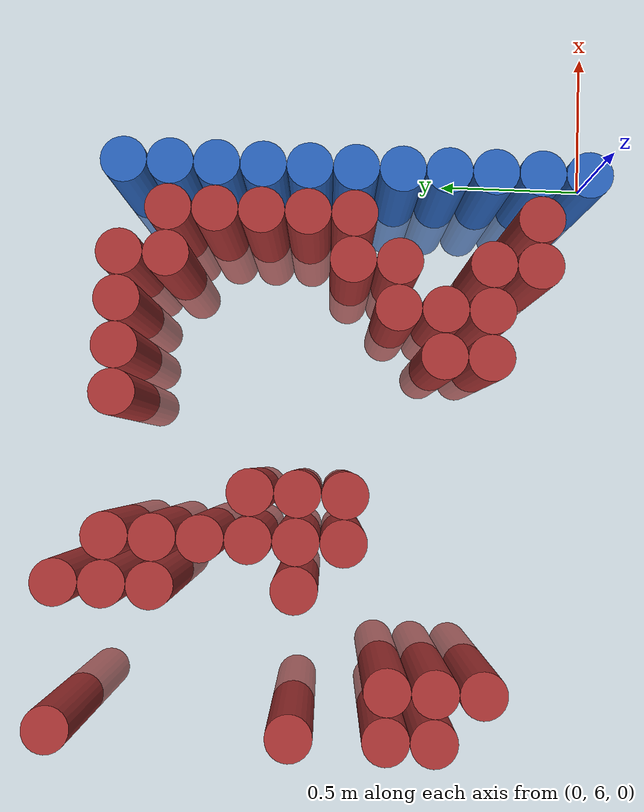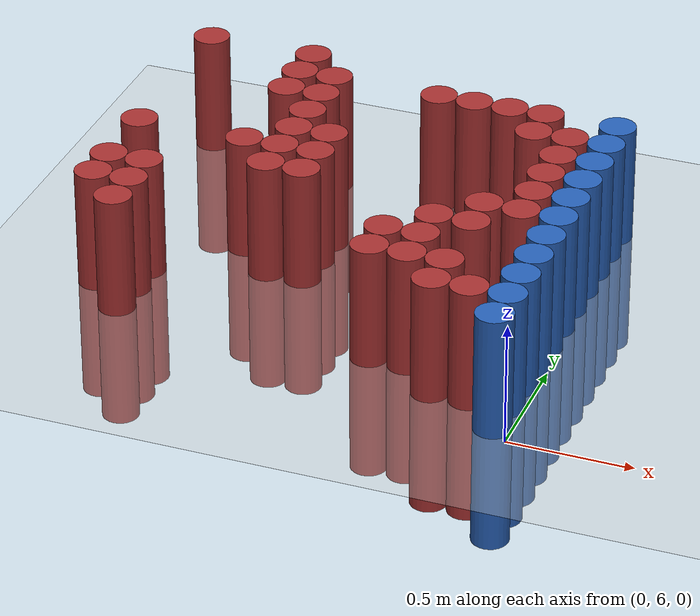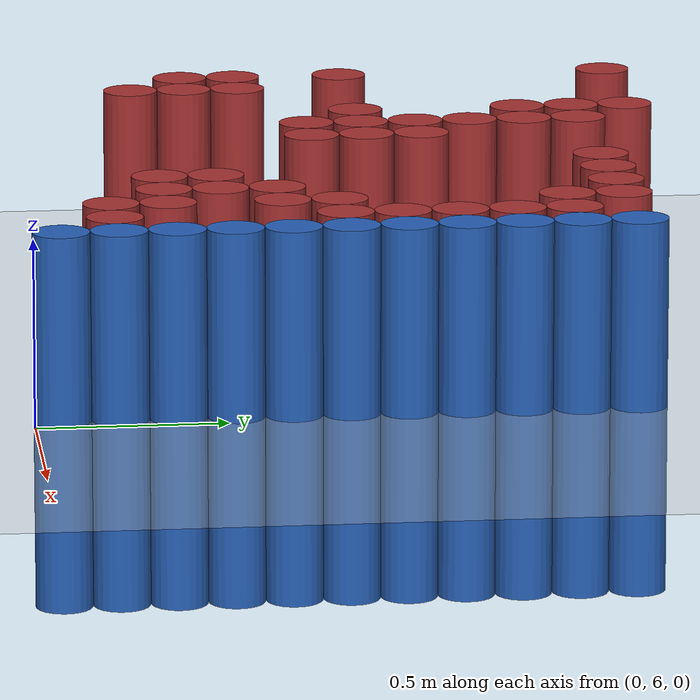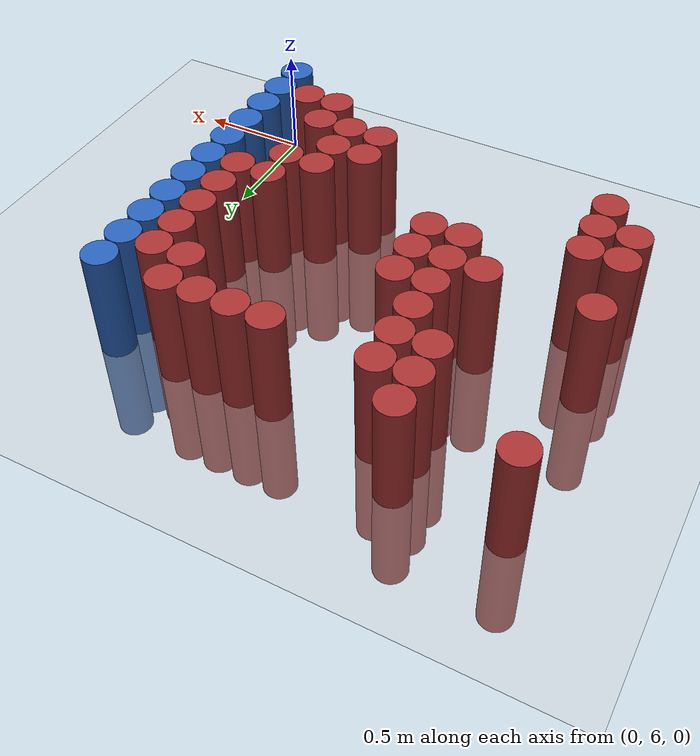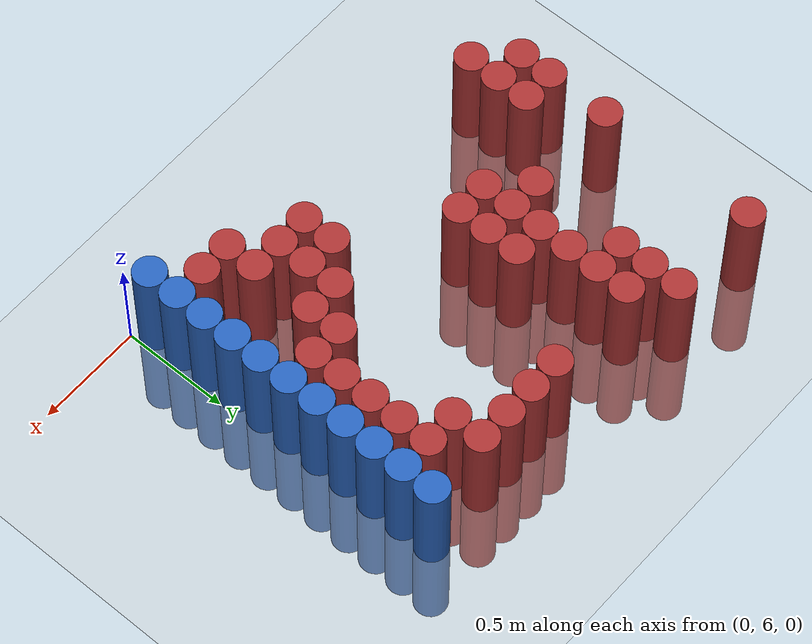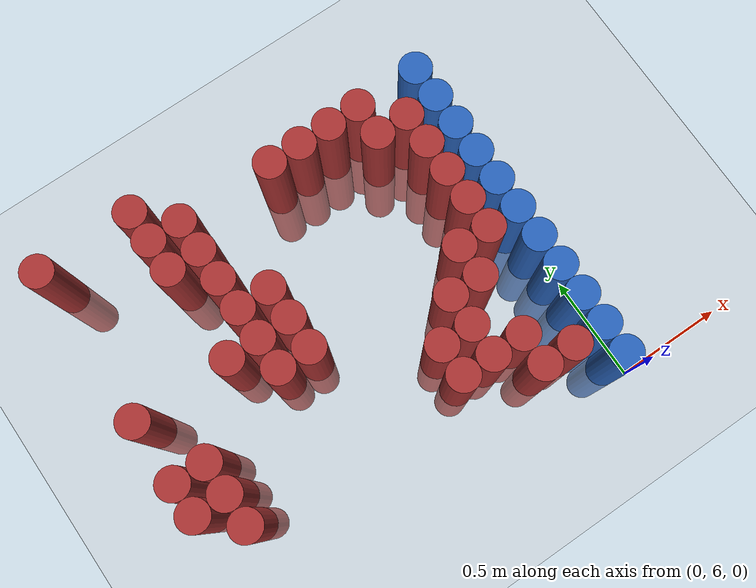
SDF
<sdf version="1.6">
 <world name="default">
  <model name="ground_plane">
   <static>1</static>
   <link name="link">
    <collision name="collision">
     <geometry><plane><normal>0 0 1</normal><size>100 100</size></plane></geometry>
     <surface><friction><ode><mu>100</mu><mu2>50</mu2></ode></friction></surface>
    </collision>
    <visual name="visual">
     <cast_shadows>0</cast_shadows>
     <geometry><plane><normal>0 0 1</normal><size>100 100</size></plane></geometry>
     <material>
      <script><uri>file://media/materials/scripts/gazebo.material</uri><name>Gazebo/Grey</name></script>
     </material>
    </visual>
   </link>
  </model>
  <model name="unit_cylinder_231">
   <static>1</static>
   <pose>-1.875000 6.525000 0.000000 0.000000 0.000000 0.000000</pose>
   <link name="link">
    <inertial>
     <mass>1</mass>
     <inertia><ixx>0.145833</ixx><ixy>0</ixy><ixz>0</ixz><iyy>0.145833</iyy><iyz>0</iyz><izz>0.125</izz></inertia>
    </inertial>
    <collision name="collision">
     <geometry><cylinder><radius>0.075000</radius><length>1</length></cylinder></geometry>
    </collision>
    <visual name="visual">
     <geometry><cylinder><radius>0.075000</radius><length>1</length></cylinder></geometry>
     <material>
      <ambient>0.648000 0.192000 0.192000 1</ambient>
      <diffuse>0.648000 0.192000 0.192000 1</diffuse>
     </material>
     <material>
      <script><name>Gazebo/Grey</name><uri>file://media/materials/scripts/gazebo.material</uri></script>
     </material>
    </visual>
   </link>
  </model>
  <model name="unit_cylinder_232">
   <static>1</static>
   <pose>-1.875000 6.675000 0.000000 0.000000 0.000000 0.000000</pose>
   <link name="link">
    <inertial>
     <mass>1</mass>
     <inertia><ixx>0.145833</ixx><ixy>0</ixy><ixz>0</ixz><iyy>0.145833</iyy><iyz>0</iyz><izz>0.125</izz></inertia>
    </inertial>
    <collision name="collision">
     <geometry><cylinder><radius>0.075000</radius><length>1</length></cylinder></geometry>
    </collision>
    <visual name="visual">
     <geometry><cylinder><radius>0.075000</radius><length>1</length></cylinder></geometry>
     <material>
      <ambient>0.648000 0.192000 0.192000 1</ambient>
      <diffuse>0.648000 0.192000 0.192000 1</diffuse>
     </material>
     <material>
      <script><name>Gazebo/Grey</name><uri>file://media/materials/scripts/gazebo.material</uri></script>
     </material>
    </visual>
   </link>
  </model>
  <model name="unit_cylinder_233">
   <static>1</static>
   <pose>-1.875000 6.975000 0.000000 0.000000 0.000000 0.000000</pose>
   <link name="link">
    <inertial>
     <mass>1</mass>
     <inertia><ixx>0.145833</ixx><ixy>0</ixy><ixz>0</ixz><iyy>0.145833</iyy><iyz>0</iyz><izz>0.125</izz></inertia>
    </inertial>
    <collision name="collision">
     <geometry><cylinder><radius>0.075000</radius><length>1</length></cylinder></geometry>
    </collision>
    <visual name="visual">
     <geometry><cylinder><radius>0.075000</radius><length>1</length></cylinder></geometry>
     <material>
      <ambient>0.648000 0.192000 0.192000 1</ambient>
      <diffuse>0.648000 0.192000 0.192000 1</diffuse>
     </material>
     <material>
      <script><name>Gazebo/Grey</name><uri>file://media/materials/scripts/gazebo.material</uri></script>
     </material>
    </visual>
   </link>
  </model>
  <model name="unit_cylinder_234">
   <static>1</static>
   <pose>-1.875000 7.725000 0.000000 0.000000 0.000000 0.000000</pose>
   <link name="link">
    <inertial>
     <mass>1</mass>
     <inertia><ixx>0.145833</ixx><ixy>0</ixy><ixz>0</ixz><iyy>0.145833</iyy><iyz>0</iyz><izz>0.125</izz></inertia>
    </inertial>
    <collision name="collision">
     <geometry><cylinder><radius>0.075000</radius><length>1</length></cylinder></geometry>
    </collision>
    <visual name="visual">
     <geometry><cylinder><radius>0.075000</radius><length>1</length></cylinder></geometry>
     <material>
      <ambient>0.648000 0.192000 0.192000 1</ambient>
      <diffuse>0.648000 0.192000 0.192000 1</diffuse>
     </material>
     <material>
      <script><name>Gazebo/Grey</name><uri>file://media/materials/scripts/gazebo.material</uri></script>
     </material>
    </visual>
   </link>
  </model>
  <model name="unit_cylinder_239">
   <static>1</static>
   <pose>-1.725000 6.375000 0.000000 0.000000 0.000000 0.000000</pose>
   <link name="link">
    <inertial>
     <mass>1</mass>
     <inertia><ixx>0.145833</ixx><ixy>0</ixy><ixz>0</ixz><iyy>0.145833</iyy><iyz>0</iyz><izz>0.125</izz></inertia>
    </inertial>
    <collision name="collision">
     <geometry><cylinder><radius>0.075000</radius><length>1</length></cylinder></geometry>
    </collision>
    <visual name="visual">
     <geometry><cylinder><radius>0.075000</radius><length>1</length></cylinder></geometry>
     <material>
      <ambient>0.648000 0.192000 0.192000 1</ambient>
      <diffuse>0.648000 0.192000 0.192000 1</diffuse>
     </material>
     <material>
      <script><name>Gazebo/Grey</name><uri>file://media/materials/scripts/gazebo.material</uri></script>
     </material>
    </visual>
   </link>
  </model>
  <model name="unit_cylinder_240">
   <static>1</static>
   <pose>-1.725000 6.525000 0.000000 0.000000 0.000000 0.000000</pose>
   <link name="link">
    <inertial>
     <mass>1</mass>
     <inertia><ixx>0.145833</ixx><ixy>0</ixy><ixz>0</ixz><iyy>0.145833</iyy><iyz>0</iyz><izz>0.125</izz></inertia>
    </inertial>
    <collision name="collision">
     <geometry><cylinder><radius>0.075000</radius><length>1</length></cylinder></geometry>
    </collision>
    <visual name="visual">
     <geometry><cylinder><radius>0.075000</radius><length>1</length></cylinder></geometry>
     <material>
      <ambient>0.648000 0.192000 0.192000 1</ambient>
      <diffuse>0.648000 0.192000 0.192000 1</diffuse>
     </material>
     <material>
      <script><name>Gazebo/Grey</name><uri>file://media/materials/scripts/gazebo.material</uri></script>
     </material>
    </visual>
   </link>
  </model>
  <model name="unit_cylinder_241">
   <static>1</static>
   <pose>-1.725000 6.675000 0.000000 0.000000 0.000000 0.000000</pose>
   <link name="link">
    <inertial>
     <mass>1</mass>
     <inertia><ixx>0.145833</ixx><ixy>0</ixy><ixz>0</ixz><iyy>0.145833</iyy><iyz>0</iyz><izz>0.125</izz></inertia>
    </inertial>
    <collision name="collision">
     <geometry><cylinder><radius>0.075000</radius><length>1</length></cylinder></geometry>
    </collision>
    <visual name="visual">
     <geometry><cylinder><radius>0.075000</radius><length>1</length></cylinder></geometry>
     <material>
      <ambient>0.648000 0.192000 0.192000 1</ambient>
      <diffuse>0.648000 0.192000 0.192000 1</diffuse>
     </material>
     <material>
      <script><name>Gazebo/Grey</name><uri>file://media/materials/scripts/gazebo.material</uri></script>
     </material>
    </visual>
   </link>
  </model>
  <model name="unit_cylinder_258">
   <static>1</static>
   <pose>-1.425000 6.975000 0.000000 0.000000 0.000000 0.000000</pose>
   <link name="link">
    <inertial>
     <mass>1</mass>
     <inertia><ixx>0.145833</ixx><ixy>0</ixy><ixz>0</ixz><iyy>0.145833</iyy><iyz>0</iyz><izz>0.125</izz></inertia>
    </inertial>
    <collision name="collision">
     <geometry><cylinder><radius>0.075000</radius><length>1</length></cylinder></geometry>
    </collision>
    <visual name="visual">
     <geometry><cylinder><radius>0.075000</radius><length>1</length></cylinder></geometry>
     <material>
      <ambient>0.648000 0.192000 0.192000 1</ambient>
      <diffuse>0.648000 0.192000 0.192000 1</diffuse>
     </material>
     <material>
      <script><name>Gazebo/Grey</name><uri>file://media/materials/scripts/gazebo.material</uri></script>
     </material>
    </visual>
   </link>
  </model>
  <model name="unit_cylinder_259">
   <static>1</static>
   <pose>-1.425000 7.425000 0.000000 0.000000 0.000000 0.000000</pose>
   <link name="link">
    <inertial>
     <mass>1</mass>
     <inertia><ixx>0.145833</ixx><ixy>0</ixy><ixz>0</ixz><iyy>0.145833</iyy><iyz>0</iyz><izz>0.125</izz></inertia>
    </inertial>
    <collision name="collision">
     <geometry><cylinder><radius>0.075000</radius><length>1</length></cylinder></geometry>
    </collision>
    <visual name="visual">
     <geometry><cylinder><radius>0.075000</radius><length>1</length></cylinder></geometry>
     <material>
      <ambient>0.648000 0.192000 0.192000 1</ambient>
      <diffuse>0.648000 0.192000 0.192000 1</diffuse>
     </material>
     <material>
      <script><name>Gazebo/Grey</name><uri>file://media/materials/scripts/gazebo.material</uri></script>
     </material>
    </visual>
   </link>
  </model>
  <model name="unit_cylinder_260">
   <static>1</static>
   <pose>-1.425000 7.575000 0.000000 0.000000 0.000000 0.000000</pose>
   <link name="link">
    <inertial>
     <mass>1</mass>
     <inertia><ixx>0.145833</ixx><ixy>0</ixy><ixz>0</ixz><iyy>0.145833</iyy><iyz>0</iyz><izz>0.125</izz></inertia>
    </inertial>
    <collision name="collision">
     <geometry><cylinder><radius>0.075000</radius><length>1</length></cylinder></geometry>
    </collision>
    <visual name="visual">
     <geometry><cylinder><radius>0.075000</radius><length>1</length></cylinder></geometry>
     <material>
      <ambient>0.648000 0.192000 0.192000 1</ambient>
      <diffuse>0.648000 0.192000 0.192000 1</diffuse>
     </material>
     <material>
      <script><name>Gazebo/Grey</name><uri>file://media/materials/scripts/gazebo.material</uri></script>
     </material>
    </visual>
   </link>
  </model>
  <model name="unit_cylinder_261">
   <static>1</static>
   <pose>-1.425000 7.725000 0.000000 0.000000 0.000000 0.000000</pose>
   <link name="link">
    <inertial>
     <mass>1</mass>
     <inertia><ixx>0.145833</ixx><ixy>0</ixy><ixz>0</ixz><iyy>0.145833</iyy><iyz>0</iyz><izz>0.125</izz></inertia>
    </inertial>
    <collision name="collision">
     <geometry><cylinder><radius>0.075000</radius><length>1</length></cylinder></geometry>
    </collision>
    <visual name="visual">
     <geometry><cylinder><radius>0.075000</radius><length>1</length></cylinder></geometry>
     <material>
      <ambient>0.648000 0.192000 0.192000 1</ambient>
      <diffuse>0.648000 0.192000 0.192000 1</diffuse>
     </material>
     <material>
      <script><name>Gazebo/Grey</name><uri>file://media/materials/scripts/gazebo.material</uri></script>
     </material>
    </visual>
   </link>
  </model>
  <model name="unit_cylinder_265">
   <static>1</static>
   <pose>-1.275000 6.825000 0.000000 0.000000 0.000000 0.000000</pose>
   <link name="link">
    <inertial>
     <mass>1</mass>
     <inertia><ixx>0.145833</ixx><ixy>0</ixy><ixz>0</ixz><iyy>0.145833</iyy><iyz>0</iyz><izz>0.125</izz></inertia>
    </inertial>
    <collision name="collision">
     <geometry><cylinder><radius>0.075000</radius><length>1</length></cylinder></geometry>
    </collision>
    <visual name="visual">
     <geometry><cylinder><radius>0.075000</radius><length>1</length></cylinder></geometry>
     <material>
      <ambient>0.648000 0.192000 0.192000 1</ambient>
      <diffuse>0.648000 0.192000 0.192000 1</diffuse>
     </material>
     <material>
      <script><name>Gazebo/Grey</name><uri>file://media/materials/scripts/gazebo.material</uri></script>
     </material>
    </visual>
   </link>
  </model>
  <model name="unit_cylinder_266">
   <static>1</static>
   <pose>-1.275000 6.975000 0.000000 0.000000 0.000000 0.000000</pose>
   <link name="link">
    <inertial>
     <mass>1</mass>
     <inertia><ixx>0.145833</ixx><ixy>0</ixy><ixz>0</ixz><iyy>0.145833</iyy><iyz>0</iyz><izz>0.125</izz></inertia>
    </inertial>
    <collision name="collision">
     <geometry><cylinder><radius>0.075000</radius><length>1</length></cylinder></geometry>
    </collision>
    <visual name="visual">
     <geometry><cylinder><radius>0.075000</radius><length>1</length></cylinder></geometry>
     <material>
      <ambient>0.648000 0.192000 0.192000 1</ambient>
      <diffuse>0.648000 0.192000 0.192000 1</diffuse>
     </material>
     <material>
      <script><name>Gazebo/Grey</name><uri>file://media/materials/scripts/gazebo.material</uri></script>
     </material>
    </visual>
   </link>
  </model>
  <model name="unit_cylinder_267">
   <static>1</static>
   <pose>-1.275000 7.125000 0.000000 0.000000 0.000000 0.000000</pose>
   <link name="link">
    <inertial>
     <mass>1</mass>
     <inertia><ixx>0.145833</ixx><ixy>0</ixy><ixz>0</ixz><iyy>0.145833</iyy><iyz>0</iyz><izz>0.125</izz></inertia>
    </inertial>
    <collision name="collision">
     <geometry><cylinder><radius>0.075000</radius><length>1</length></cylinder></geometry>
    </collision>
    <visual name="visual">
     <geometry><cylinder><radius>0.075000</radius><length>1</length></cylinder></geometry>
     <material>
      <ambient>0.648000 0.192000 0.192000 1</ambient>
      <diffuse>0.648000 0.192000 0.192000 1</diffuse>
     </material>
     <material>
      <script><name>Gazebo/Grey</name><uri>file://media/materials/scripts/gazebo.material</uri></script>
     </material>
    </visual>
   </link>
  </model>
  <model name="unit_cylinder_268">
   <static>1</static>
   <pose>-1.275000 7.275000 0.000000 0.000000 0.000000 0.000000</pose>
   <link name="link">
    <inertial>
     <mass>1</mass>
     <inertia><ixx>0.145833</ixx><ixy>0</ixy><ixz>0</ixz><iyy>0.145833</iyy><iyz>0</iyz><izz>0.125</izz></inertia>
    </inertial>
    <collision name="collision">
     <geometry><cylinder><radius>0.075000</radius><length>1</length></cylinder></geometry>
    </collision>
    <visual name="visual">
     <geometry><cylinder><radius>0.075000</radius><length>1</length></cylinder></geometry>
     <material>
      <ambient>0.648000 0.192000 0.192000 1</ambient>
      <diffuse>0.648000 0.192000 0.192000 1</diffuse>
     </material>
     <material>
      <script><name>Gazebo/Grey</name><uri>file://media/materials/scripts/gazebo.material</uri></script>
     </material>
    </visual>
   </link>
  </model>
  <model name="unit_cylinder_269">
   <static>1</static>
   <pose>-1.275000 7.425000 0.000000 0.000000 0.000000 0.000000</pose>
   <link name="link">
    <inertial>
     <mass>1</mass>
     <inertia><ixx>0.145833</ixx><ixy>0</ixy><ixz>0</ixz><iyy>0.145833</iyy><iyz>0</iyz><izz>0.125</izz></inertia>
    </inertial>
    <collision name="collision">
     <geometry><cylinder><radius>0.075000</radius><length>1</length></cylinder></geometry>
    </collision>
    <visual name="visual">
     <geometry><cylinder><radius>0.075000</radius><length>1</length></cylinder></geometry>
     <material>
      <ambient>0.648000 0.192000 0.192000 1</ambient>
      <diffuse>0.648000 0.192000 0.192000 1</diffuse>
     </material>
     <material>
      <script><name>Gazebo/Grey</name><uri>file://media/materials/scripts/gazebo.material</uri></script>
     </material>
    </visual>
   </link>
  </model>
  <model name="unit_cylinder_270">
   <static>1</static>
   <pose>-1.275000 7.575000 0.000000 0.000000 0.000000 0.000000</pose>
   <link name="link">
    <inertial>
     <mass>1</mass>
     <inertia><ixx>0.145833</ixx><ixy>0</ixy><ixz>0</ixz><iyy>0.145833</iyy><iyz>0</iyz><izz>0.125</izz></inertia>
    </inertial>
    <collision name="collision">
     <geometry><cylinder><radius>0.075000</radius><length>1</length></cylinder></geometry>
    </collision>
    <visual name="visual">
     <geometry><cylinder><radius>0.075000</radius><length>1</length></cylinder></geometry>
     <material>
      <ambient>0.648000 0.192000 0.192000 1</ambient>
      <diffuse>0.648000 0.192000 0.192000 1</diffuse>
     </material>
     <material>
      <script><name>Gazebo/Grey</name><uri>file://media/materials/scripts/gazebo.material</uri></script>
     </material>
    </visual>
   </link>
  </model>
  <model name="unit_cylinder_272">
   <static>1</static>
   <pose>-1.125000 6.825000 0.000000 0.000000 0.000000 0.000000</pose>
   <link name="link">
    <inertial>
     <mass>1</mass>
     <inertia><ixx>0.145833</ixx><ixy>0</ixy><ixz>0</ixz><iyy>0.145833</iyy><iyz>0</iyz><izz>0.125</izz></inertia>
    </inertial>
    <collision name="collision">
     <geometry><cylinder><radius>0.075000</radius><length>1</length></cylinder></geometry>
    </collision>
    <visual name="visual">
     <geometry><cylinder><radius>0.075000</radius><length>1</length></cylinder></geometry>
     <material>
      <ambient>0.648000 0.192000 0.192000 1</ambient>
      <diffuse>0.648000 0.192000 0.192000 1</diffuse>
     </material>
     <material>
      <script><name>Gazebo/Grey</name><uri>file://media/materials/scripts/gazebo.material</uri></script>
     </material>
    </visual>
   </link>
  </model>
  <model name="unit_cylinder_273">
   <static>1</static>
   <pose>-1.125000 6.975000 0.000000 0.000000 0.000000 0.000000</pose>
   <link name="link">
    <inertial>
     <mass>1</mass>
     <inertia><ixx>0.145833</ixx><ixy>0</ixy><ixz>0</ixz><iyy>0.145833</iyy><iyz>0</iyz><izz>0.125</izz></inertia>
    </inertial>
    <collision name="collision">
     <geometry><cylinder><radius>0.075000</radius><length>1</length></cylinder></geometry>
    </collision>
    <visual name="visual">
     <geometry><cylinder><radius>0.075000</radius><length>1</length></cylinder></geometry>
     <material>
      <ambient>0.648000 0.192000 0.192000 1</ambient>
      <diffuse>0.648000 0.192000 0.192000 1</diffuse>
     </material>
     <material>
      <script><name>Gazebo/Grey</name><uri>file://media/materials/scripts/gazebo.material</uri></script>
     </material>
    </visual>
   </link>
  </model>
  <model name="unit_cylinder_274">
   <static>1</static>
   <pose>-1.125000 7.125000 0.000000 0.000000 0.000000 0.000000</pose>
   <link name="link">
    <inertial>
     <mass>1</mass>
     <inertia><ixx>0.145833</ixx><ixy>0</ixy><ixz>0</ixz><iyy>0.145833</iyy><iyz>0</iyz><izz>0.125</izz></inertia>
    </inertial>
    <collision name="collision">
     <geometry><cylinder><radius>0.075000</radius><length>1</length></cylinder></geometry>
    </collision>
    <visual name="visual">
     <geometry><cylinder><radius>0.075000</radius><length>1</length></cylinder></geometry>
     <material>
      <ambient>0.648000 0.192000 0.192000 1</ambient>
      <diffuse>0.648000 0.192000 0.192000 1</diffuse>
     </material>
     <material>
      <script><name>Gazebo/Grey</name><uri>file://media/materials/scripts/gazebo.material</uri></script>
     </material>
    </visual>
   </link>
  </model>
  <model name="unit_cylinder_282">
   <static>1</static>
   <pose>-0.825000 7.575000 0.000000 0.000000 0.000000 0.000000</pose>
   <link name="link">
    <inertial>
     <mass>1</mass>
     <inertia><ixx>0.145833</ixx><ixy>0</ixy><ixz>0</ixz><iyy>0.145833</iyy><iyz>0</iyz><izz>0.125</izz></inertia>
    </inertial>
    <collision name="collision">
     <geometry><cylinder><radius>0.075000</radius><length>1</length></cylinder></geometry>
    </collision>
    <visual name="visual">
     <geometry><cylinder><radius>0.075000</radius><length>1</length></cylinder></geometry>
     <material>
      <ambient>0.648000 0.192000 0.192000 1</ambient>
      <diffuse>0.648000 0.192000 0.192000 1</diffuse>
     </material>
     <material>
      <script><name>Gazebo/Grey</name><uri>file://media/materials/scripts/gazebo.material</uri></script>
     </material>
    </visual>
   </link>
  </model>
  <model name="unit_cylinder_287">
   <static>1</static>
   <pose>-0.675000 6.375000 0.000000 0.000000 0.000000 0.000000</pose>
   <link name="link">
    <inertial>
     <mass>1</mass>
     <inertia><ixx>0.145833</ixx><ixy>0</ixy><ixz>0</ixz><iyy>0.145833</iyy><iyz>0</iyz><izz>0.125</izz></inertia>
    </inertial>
    <collision name="collision">
     <geometry><cylinder><radius>0.075000</radius><length>1</length></cylinder></geometry>
    </collision>
    <visual name="visual">
     <geometry><cylinder><radius>0.075000</radius><length>1</length></cylinder></geometry>
     <material>
      <ambient>0.648000 0.192000 0.192000 1</ambient>
      <diffuse>0.648000 0.192000 0.192000 1</diffuse>
     </material>
     <material>
      <script><name>Gazebo/Grey</name><uri>file://media/materials/scripts/gazebo.material</uri></script>
     </material>
    </visual>
   </link>
  </model>
  <model name="unit_cylinder_288">
   <static>1</static>
   <pose>-0.675000 6.525000 0.000000 0.000000 0.000000 0.000000</pose>
   <link name="link">
    <inertial>
     <mass>1</mass>
     <inertia><ixx>0.145833</ixx><ixy>0</ixy><ixz>0</ixz><iyy>0.145833</iyy><iyz>0</iyz><izz>0.125</izz></inertia>
    </inertial>
    <collision name="collision">
     <geometry><cylinder><radius>0.075000</radius><length>1</length></cylinder></geometry>
    </collision>
    <visual name="visual">
     <geometry><cylinder><radius>0.075000</radius><length>1</length></cylinder></geometry>
     <material>
      <ambient>0.648000 0.192000 0.192000 1</ambient>
      <diffuse>0.648000 0.192000 0.192000 1</diffuse>
     </material>
     <material>
      <script><name>Gazebo/Grey</name><uri>file://media/materials/scripts/gazebo.material</uri></script>
     </material>
    </visual>
   </link>
  </model>
  <model name="unit_cylinder_289">
   <static>1</static>
   <pose>-0.675000 7.575000 0.000000 0.000000 0.000000 0.000000</pose>
   <link name="link">
    <inertial>
     <mass>1</mass>
     <inertia><ixx>0.145833</ixx><ixy>0</ixy><ixz>0</ixz><iyy>0.145833</iyy><iyz>0</iyz><izz>0.125</izz></inertia>
    </inertial>
    <collision name="collision">
     <geometry><cylinder><radius>0.075000</radius><length>1</length></cylinder></geometry>
    </collision>
    <visual name="visual">
     <geometry><cylinder><radius>0.075000</radius><length>1</length></cylinder></geometry>
     <material>
      <ambient>0.648000 0.192000 0.192000 1</ambient>
      <diffuse>0.648000 0.192000 0.192000 1</diffuse>
     </material>
     <material>
      <script><name>Gazebo/Grey</name><uri>file://media/materials/scripts/gazebo.material</uri></script>
     </material>
    </visual>
   </link>
  </model>
  <model name="unit_cylinder_293">
   <static>1</static>
   <pose>-0.525000 6.375000 0.000000 0.000000 0.000000 0.000000</pose>
   <link name="link">
    <inertial>
     <mass>1</mass>
     <inertia><ixx>0.145833</ixx><ixy>0</ixy><ixz>0</ixz><iyy>0.145833</iyy><iyz>0</iyz><izz>0.125</izz></inertia>
    </inertial>
    <collision name="collision">
     <geometry><cylinder><radius>0.075000</radius><length>1</length></cylinder></geometry>
    </collision>
    <visual name="visual">
     <geometry><cylinder><radius>0.075000</radius><length>1</length></cylinder></geometry>
     <material>
      <ambient>0.648000 0.192000 0.192000 1</ambient>
      <diffuse>0.648000 0.192000 0.192000 1</diffuse>
     </material>
     <material>
      <script><name>Gazebo/Grey</name><uri>file://media/materials/scripts/gazebo.material</uri></script>
     </material>
    </visual>
   </link>
  </model>
  <model name="unit_cylinder_294">
   <static>1</static>
   <pose>-0.525000 6.525000 0.000000 0.000000 0.000000 0.000000</pose>
   <link name="link">
    <inertial>
     <mass>1</mass>
     <inertia><ixx>0.145833</ixx><ixy>0</ixy><ixz>0</ixz><iyy>0.145833</iyy><iyz>0</iyz><izz>0.125</izz></inertia>
    </inertial>
    <collision name="collision">
     <geometry><cylinder><radius>0.075000</radius><length>1</length></cylinder></geometry>
    </collision>
    <visual name="visual">
     <geometry><cylinder><radius>0.075000</radius><length>1</length></cylinder></geometry>
     <material>
      <ambient>0.648000 0.192000 0.192000 1</ambient>
      <diffuse>0.648000 0.192000 0.192000 1</diffuse>
     </material>
     <material>
      <script><name>Gazebo/Grey</name><uri>file://media/materials/scripts/gazebo.material</uri></script>
     </material>
    </visual>
   </link>
  </model>
  <model name="unit_cylinder_295">
   <static>1</static>
   <pose>-0.525000 6.675000 0.000000 0.000000 0.000000 0.000000</pose>
   <link name="link">
    <inertial>
     <mass>1</mass>
     <inertia><ixx>0.145833</ixx><ixy>0</ixy><ixz>0</ixz><iyy>0.145833</iyy><iyz>0</iyz><izz>0.125</izz></inertia>
    </inertial>
    <collision name="collision">
     <geometry><cylinder><radius>0.075000</radius><length>1</length></cylinder></geometry>
    </collision>
    <visual name="visual">
     <geometry><cylinder><radius>0.075000</radius><length>1</length></cylinder></geometry>
     <material>
      <ambient>0.648000 0.192000 0.192000 1</ambient>
      <diffuse>0.648000 0.192000 0.192000 1</diffuse>
     </material>
     <material>
      <script><name>Gazebo/Grey</name><uri>file://media/materials/scripts/gazebo.material</uri></script>
     </material>
    </visual>
   </link>
  </model>
  <model name="unit_cylinder_296">
   <static>1</static>
   <pose>-0.525000 7.575000 0.000000 0.000000 0.000000 0.000000</pose>
   <link name="link">
    <inertial>
     <mass>1</mass>
     <inertia><ixx>0.145833</ixx><ixy>0</ixy><ixz>0</ixz><iyy>0.145833</iyy><iyz>0</iyz><izz>0.125</izz></inertia>
    </inertial>
    <collision name="collision">
     <geometry><cylinder><radius>0.075000</radius><length>1</length></cylinder></geometry>
    </collision>
    <visual name="visual">
     <geometry><cylinder><radius>0.075000</radius><length>1</length></cylinder></geometry>
     <material>
      <ambient>0.648000 0.192000 0.192000 1</ambient>
      <diffuse>0.648000 0.192000 0.192000 1</diffuse>
     </material>
     <material>
      <script><name>Gazebo/Grey</name><uri>file://media/materials/scripts/gazebo.material</uri></script>
     </material>
    </visual>
   </link>
  </model>
  <model name="unit_cylinder_298">
   <static>1</static>
   <pose>-0.375000 6.225000 0.000000 0.000000 0.000000 0.000000</pose>
   <link name="link">
    <inertial>
     <mass>1</mass>
     <inertia><ixx>0.145833</ixx><ixy>0</ixy><ixz>0</ixz><iyy>0.145833</iyy><iyz>0</iyz><izz>0.125</izz></inertia>
    </inertial>
    <collision name="collision">
     <geometry><cylinder><radius>0.075000</radius><length>1</length></cylinder></geometry>
    </collision>
    <visual name="visual">
     <geometry><cylinder><radius>0.075000</radius><length>1</length></cylinder></geometry>
     <material>
      <ambient>0.648000 0.192000 0.192000 1</ambient>
      <diffuse>0.648000 0.192000 0.192000 1</diffuse>
     </material>
     <material>
      <script><name>Gazebo/Grey</name><uri>file://media/materials/scripts/gazebo.material</uri></script>
     </material>
    </visual>
   </link>
  </model>
  <model name="unit_cylinder_299">
   <static>1</static>
   <pose>-0.375000 6.375000 0.000000 0.000000 0.000000 0.000000</pose>
   <link name="link">
    <inertial>
     <mass>1</mass>
     <inertia><ixx>0.145833</ixx><ixy>0</ixy><ixz>0</ixz><iyy>0.145833</iyy><iyz>0</iyz><izz>0.125</izz></inertia>
    </inertial>
    <collision name="collision">
     <geometry><cylinder><radius>0.075000</radius><length>1</length></cylinder></geometry>
    </collision>
    <visual name="visual">
     <geometry><cylinder><radius>0.075000</radius><length>1</length></cylinder></geometry>
     <material>
      <ambient>0.648000 0.192000 0.192000 1</ambient>
      <diffuse>0.648000 0.192000 0.192000 1</diffuse>
     </material>
     <material>
      <script><name>Gazebo/Grey</name><uri>file://media/materials/scripts/gazebo.material</uri></script>
     </material>
    </visual>
   </link>
  </model>
  <model name="unit_cylinder_300">
   <static>1</static>
   <pose>-0.375000 6.675000 0.000000 0.000000 0.000000 0.000000</pose>
   <link name="link">
    <inertial>
     <mass>1</mass>
     <inertia><ixx>0.145833</ixx><ixy>0</ixy><ixz>0</ixz><iyy>0.145833</iyy><iyz>0</iyz><izz>0.125</izz></inertia>
    </inertial>
    <collision name="collision">
     <geometry><cylinder><radius>0.075000</radius><length>1</length></cylinder></geometry>
    </collision>
    <visual name="visual">
     <geometry><cylinder><radius>0.075000</radius><length>1</length></cylinder></geometry>
     <material>
      <ambient>0.648000 0.192000 0.192000 1</ambient>
      <diffuse>0.648000 0.192000 0.192000 1</diffuse>
     </material>
     <material>
      <script><name>Gazebo/Grey</name><uri>file://media/materials/scripts/gazebo.material</uri></script>
     </material>
    </visual>
   </link>
  </model>
  <model name="unit_cylinder_301">
   <static>1</static>
   <pose>-0.375000 6.825000 0.000000 0.000000 0.000000 0.000000</pose>
   <link name="link">
    <inertial>
     <mass>1</mass>
     <inertia><ixx>0.145833</ixx><ixy>0</ixy><ixz>0</ixz><iyy>0.145833</iyy><iyz>0</iyz><izz>0.125</izz></inertia>
    </inertial>
    <collision name="collision">
     <geometry><cylinder><radius>0.075000</radius><length>1</length></cylinder></geometry>
    </collision>
    <visual name="visual">
     <geometry><cylinder><radius>0.075000</radius><length>1</length></cylinder></geometry>
     <material>
      <ambient>0.648000 0.192000 0.192000 1</ambient>
      <diffuse>0.648000 0.192000 0.192000 1</diffuse>
     </material>
     <material>
      <script><name>Gazebo/Grey</name><uri>file://media/materials/scripts/gazebo.material</uri></script>
     </material>
    </visual>
   </link>
  </model>
  <model name="unit_cylinder_302">
   <static>1</static>
   <pose>-0.375000 7.425000 0.000000 0.000000 0.000000 0.000000</pose>
   <link name="link">
    <inertial>
     <mass>1</mass>
     <inertia><ixx>0.145833</ixx><ixy>0</ixy><ixz>0</ixz><iyy>0.145833</iyy><iyz>0</iyz><izz>0.125</izz></inertia>
    </inertial>
    <collision name="collision">
     <geometry><cylinder><radius>0.075000</radius><length>1</length></cylinder></geometry>
    </collision>
    <visual name="visual">
     <geometry><cylinder><radius>0.075000</radius><length>1</length></cylinder></geometry>
     <material>
      <ambient>0.648000 0.192000 0.192000 1</ambient>
      <diffuse>0.648000 0.192000 0.192000 1</diffuse>
     </material>
     <material>
      <script><name>Gazebo/Grey</name><uri>file://media/materials/scripts/gazebo.material</uri></script>
     </material>
    </visual>
   </link>
  </model>
  <model name="unit_cylinder_303">
   <static>1</static>
   <pose>-0.375000 7.575000 0.000000 0.000000 0.000000 0.000000</pose>
   <link name="link">
    <inertial>
     <mass>1</mass>
     <inertia><ixx>0.145833</ixx><ixy>0</ixy><ixz>0</ixz><iyy>0.145833</iyy><iyz>0</iyz><izz>0.125</izz></inertia>
    </inertial>
    <collision name="collision">
     <geometry><cylinder><radius>0.075000</radius><length>1</length></cylinder></geometry>
    </collision>
    <visual name="visual">
     <geometry><cylinder><radius>0.075000</radius><length>1</length></cylinder></geometry>
     <material>
      <ambient>0.648000 0.192000 0.192000 1</ambient>
      <diffuse>0.648000 0.192000 0.192000 1</diffuse>
     </material>
     <material>
      <script><name>Gazebo/Grey</name><uri>file://media/materials/scripts/gazebo.material</uri></script>
     </material>
    </visual>
   </link>
  </model>
  <model name="unit_cylinder_311">
   <static>1</static>
   <pose>-0.225000 6.225000 0.000000 0.000000 0.000000 0.000000</pose>
   <link name="link">
    <inertial>
     <mass>1</mass>
     <inertia><ixx>0.145833</ixx><ixy>0</ixy><ixz>0</ixz><iyy>0.145833</iyy><iyz>0</iyz><izz>0.125</izz></inertia>
    </inertial>
    <collision name="collision">
     <geometry><cylinder><radius>0.075000</radius><length>1</length></cylinder></geometry>
    </collision>
    <visual name="visual">
     <geometry><cylinder><radius>0.075000</radius><length>1</length></cylinder></geometry>
     <material>
      <ambient>0.648000 0.192000 0.192000 1</ambient>
      <diffuse>0.648000 0.192000 0.192000 1</diffuse>
     </material>
     <material>
      <script><name>Gazebo/Grey</name><uri>file://media/materials/scripts/gazebo.material</uri></script>
     </material>
    </visual>
   </link>
  </model>
  <model name="unit_cylinder_312">
   <static>1</static>
   <pose>-0.225000 6.825000 0.000000 0.000000 0.000000 0.000000</pose>
   <link name="link">
    <inertial>
     <mass>1</mass>
     <inertia><ixx>0.145833</ixx><ixy>0</ixy><ixz>0</ixz><iyy>0.145833</iyy><iyz>0</iyz><izz>0.125</izz></inertia>
    </inertial>
    <collision name="collision">
     <geometry><cylinder><radius>0.075000</radius><length>1</length></cylinder></geometry>
    </collision>
    <visual name="visual">
     <geometry><cylinder><radius>0.075000</radius><length>1</length></cylinder></geometry>
     <material>
      <ambient>0.648000 0.192000 0.192000 1</ambient>
      <diffuse>0.648000 0.192000 0.192000 1</diffuse>
     </material>
     <material>
      <script><name>Gazebo/Grey</name><uri>file://media/materials/scripts/gazebo.material</uri></script>
     </material>
    </visual>
   </link>
  </model>
  <model name="unit_cylinder_313">
   <static>1</static>
   <pose>-0.225000 6.975000 0.000000 0.000000 0.000000 0.000000</pose>
   <link name="link">
    <inertial>
     <mass>1</mass>
     <inertia><ixx>0.145833</ixx><ixy>0</ixy><ixz>0</ixz><iyy>0.145833</iyy><iyz>0</iyz><izz>0.125</izz></inertia>
    </inertial>
    <collision name="collision">
     <geometry><cylinder><radius>0.075000</radius><length>1</length></cylinder></geometry>
    </collision>
    <visual name="visual">
     <geometry><cylinder><radius>0.075000</radius><length>1</length></cylinder></geometry>
     <material>
      <ambient>0.648000 0.192000 0.192000 1</ambient>
      <diffuse>0.648000 0.192000 0.192000 1</diffuse>
     </material>
     <material>
      <script><name>Gazebo/Grey</name><uri>file://media/materials/scripts/gazebo.material</uri></script>
     </material>
    </visual>
   </link>
  </model>
  <model name="unit_cylinder_314">
   <static>1</static>
   <pose>-0.225000 7.125000 0.000000 0.000000 0.000000 0.000000</pose>
   <link name="link">
    <inertial>
     <mass>1</mass>
     <inertia><ixx>0.145833</ixx><ixy>0</ixy><ixz>0</ixz><iyy>0.145833</iyy><iyz>0</iyz><izz>0.125</izz></inertia>
    </inertial>
    <collision name="collision">
     <geometry><cylinder><radius>0.075000</radius><length>1</length></cylinder></geometry>
    </collision>
    <visual name="visual">
     <geometry><cylinder><radius>0.075000</radius><length>1</length></cylinder></geometry>
     <material>
      <ambient>0.648000 0.192000 0.192000 1</ambient>
      <diffuse>0.648000 0.192000 0.192000 1</diffuse>
     </material>
     <material>
      <script><name>Gazebo/Grey</name><uri>file://media/materials/scripts/gazebo.material</uri></script>
     </material>
    </visual>
   </link>
  </model>
  <model name="unit_cylinder_315">
   <static>1</static>
   <pose>-0.225000 7.275000 0.000000 0.000000 0.000000 0.000000</pose>
   <link name="link">
    <inertial>
     <mass>1</mass>
     <inertia><ixx>0.145833</ixx><ixy>0</ixy><ixz>0</ixz><iyy>0.145833</iyy><iyz>0</iyz><izz>0.125</izz></inertia>
    </inertial>
    <collision name="collision">
     <geometry><cylinder><radius>0.075000</radius><length>1</length></cylinder></geometry>
    </collision>
    <visual name="visual">
     <geometry><cylinder><radius>0.075000</radius><length>1</length></cylinder></geometry>
     <material>
      <ambient>0.648000 0.192000 0.192000 1</ambient>
      <diffuse>0.648000 0.192000 0.192000 1</diffuse>
     </material>
     <material>
      <script><name>Gazebo/Grey</name><uri>file://media/materials/scripts/gazebo.material</uri></script>
     </material>
    </visual>
   </link>
  </model>
  <model name="unit_cylinder_316">
   <static>1</static>
   <pose>-0.225000 7.425000 0.000000 0.000000 0.000000 0.000000</pose>
   <link name="link">
    <inertial>
     <mass>1</mass>
     <inertia><ixx>0.145833</ixx><ixy>0</ixy><ixz>0</ixz><iyy>0.145833</iyy><iyz>0</iyz><izz>0.125</izz></inertia>
    </inertial>
    <collision name="collision">
     <geometry><cylinder><radius>0.075000</radius><length>1</length></cylinder></geometry>
    </collision>
    <visual name="visual">
     <geometry><cylinder><radius>0.075000</radius><length>1</length></cylinder></geometry>
     <material>
      <ambient>0.648000 0.192000 0.192000 1</ambient>
      <diffuse>0.648000 0.192000 0.192000 1</diffuse>
     </material>
     <material>
      <script><name>Gazebo/Grey</name><uri>file://media/materials/scripts/gazebo.material</uri></script>
     </material>
    </visual>
   </link>
  </model>
  <model name="unit_cylinder_331">
   <static>1</static>
   <pose>-0.075000 6.075000 0.000000 0.000000 0.000000 0.000000</pose>
   <link name="link">
    <inertial>
     <mass>1</mass>
     <inertia><ixx>0.145833</ixx><ixy>0</ixy><ixz>0</ixz><iyy>0.145833</iyy><iyz>0</iyz><izz>0.125</izz></inertia>
    </inertial>
    <collision name="collision">
     <geometry><cylinder><radius>0.075000</radius><length>1</length></cylinder></geometry>
    </collision>
    <visual name="visual">
     <geometry><cylinder><radius>0.075000</radius><length>1</length></cylinder></geometry>
     <material>
      <ambient>0.152000 0.379000 0.720000 1</ambient>
      <diffuse>0.152000 0.379000 0.720000 1</diffuse>
     </material>
     <material>
      <script><name>Gazebo/Grey</name><uri>file://media/materials/scripts/gazebo.material</uri></script>
     </material>
    </visual>
   </link>
  </model>
  <model name="unit_cylinder_332">
   <static>1</static>
   <pose>-0.075000 6.225000 0.000000 0.000000 0.000000 0.000000</pose>
   <link name="link">
    <inertial>
     <mass>1</mass>
     <inertia><ixx>0.145833</ixx><ixy>0</ixy><ixz>0</ixz><iyy>0.145833</iyy><iyz>0</iyz><izz>0.125</izz></inertia>
    </inertial>
    <collision name="collision">
     <geometry><cylinder><radius>0.075000</radius><length>1</length></cylinder></geometry>
    </collision>
    <visual name="visual">
     <geometry><cylinder><radius>0.075000</radius><length>1</length></cylinder></geometry>
     <material>
      <ambient>0.152000 0.379000 0.720000 1</ambient>
      <diffuse>0.152000 0.379000 0.720000 1</diffuse>
     </material>
     <material>
      <script><name>Gazebo/Grey</name><uri>file://media/materials/scripts/gazebo.material</uri></script>
     </material>
    </visual>
   </link>
  </model>
  <model name="unit_cylinder_333">
   <static>1</static>
   <pose>-0.075000 6.375000 0.000000 0.000000 0.000000 0.000000</pose>
   <link name="link">
    <inertial>
     <mass>1</mass>
     <inertia><ixx>0.145833</ixx><ixy>0</ixy><ixz>0</ixz><iyy>0.145833</iyy><iyz>0</iyz><izz>0.125</izz></inertia>
    </inertial>
    <collision name="collision">
     <geometry><cylinder><radius>0.075000</radius><length>1</length></cylinder></geometry>
    </collision>
    <visual name="visual">
     <geometry><cylinder><radius>0.075000</radius><length>1</length></cylinder></geometry>
     <material>
      <ambient>0.152000 0.379000 0.720000 1</ambient>
      <diffuse>0.152000 0.379000 0.720000 1</diffuse>
     </material>
     <material>
      <script><name>Gazebo/Grey</name><uri>file://media/materials/scripts/gazebo.material</uri></script>
     </material>
    </visual>
   </link>
  </model>
  <model name="unit_cylinder_334">
   <static>1</static>
   <pose>-0.075000 6.525000 0.000000 0.000000 0.000000 0.000000</pose>
   <link name="link">
    <inertial>
     <mass>1</mass>
     <inertia><ixx>0.145833</ixx><ixy>0</ixy><ixz>0</ixz><iyy>0.145833</iyy><iyz>0</iyz><izz>0.125</izz></inertia>
    </inertial>
    <collision name="collision">
     <geometry><cylinder><radius>0.075000</radius><length>1</length></cylinder></geometry>
    </collision>
    <visual name="visual">
     <geometry><cylinder><radius>0.075000</radius><length>1</length></cylinder></geometry>
     <material>
      <ambient>0.152000 0.379000 0.720000 1</ambient>
      <diffuse>0.152000 0.379000 0.720000 1</diffuse>
     </material>
     <material>
      <script><name>Gazebo/Grey</name><uri>file://media/materials/scripts/gazebo.material</uri></script>
     </material>
    </visual>
   </link>
  </model>
  <model name="unit_cylinder_335">
   <static>1</static>
   <pose>-0.075000 6.675000 0.000000 0.000000 0.000000 0.000000</pose>
   <link name="link">
    <inertial>
     <mass>1</mass>
     <inertia><ixx>0.145833</ixx><ixy>0</ixy><ixz>0</ixz><iyy>0.145833</iyy><iyz>0</iyz><izz>0.125</izz></inertia>
    </inertial>
    <collision name="collision">
     <geometry><cylinder><radius>0.075000</radius><length>1</length></cylinder></geometry>
    </collision>
    <visual name="visual">
     <geometry><cylinder><radius>0.075000</radius><length>1</length></cylinder></geometry>
     <material>
      <ambient>0.152000 0.379000 0.720000 1</ambient>
      <diffuse>0.152000 0.379000 0.720000 1</diffuse>
     </material>
     <material>
      <script><name>Gazebo/Grey</name><uri>file://media/materials/scripts/gazebo.material</uri></script>
     </material>
    </visual>
   </link>
  </model>
  <model name="unit_cylinder_336">
   <static>1</static>
   <pose>-0.075000 6.825000 0.000000 0.000000 0.000000 0.000000</pose>
   <link name="link">
    <inertial>
     <mass>1</mass>
     <inertia><ixx>0.145833</ixx><ixy>0</ixy><ixz>0</ixz><iyy>0.145833</iyy><iyz>0</iyz><izz>0.125</izz></inertia>
    </inertial>
    <collision name="collision">
     <geometry><cylinder><radius>0.075000</radius><length>1</length></cylinder></geometry>
    </collision>
    <visual name="visual">
     <geometry><cylinder><radius>0.075000</radius><length>1</length></cylinder></geometry>
     <material>
      <ambient>0.152000 0.379000 0.720000 1</ambient>
      <diffuse>0.152000 0.379000 0.720000 1</diffuse>
     </material>
     <material>
      <script><name>Gazebo/Grey</name><uri>file://media/materials/scripts/gazebo.material</uri></script>
     </material>
    </visual>
   </link>
  </model>
  <model name="unit_cylinder_337">
   <static>1</static>
   <pose>-0.075000 6.975000 0.000000 0.000000 0.000000 0.000000</pose>
   <link name="link">
    <inertial>
     <mass>1</mass>
     <inertia><ixx>0.145833</ixx><ixy>0</ixy><ixz>0</ixz><iyy>0.145833</iyy><iyz>0</iyz><izz>0.125</izz></inertia>
    </inertial>
    <collision name="collision">
     <geometry><cylinder><radius>0.075000</radius><length>1</length></cylinder></geometry>
    </collision>
    <visual name="visual">
     <geometry><cylinder><radius>0.075000</radius><length>1</length></cylinder></geometry>
     <material>
      <ambient>0.152000 0.379000 0.720000 1</ambient>
      <diffuse>0.152000 0.379000 0.720000 1</diffuse>
     </material>
     <material>
      <script><name>Gazebo/Grey</name><uri>file://media/materials/scripts/gazebo.material</uri></script>
     </material>
    </visual>
   </link>
  </model>
  <model name="unit_cylinder_338">
   <static>1</static>
   <pose>-0.075000 7.125000 0.000000 0.000000 0.000000 0.000000</pose>
   <link name="link">
    <inertial>
     <mass>1</mass>
     <inertia><ixx>0.145833</ixx><ixy>0</ixy><ixz>0</ixz><iyy>0.145833</iyy><iyz>0</iyz><izz>0.125</izz></inertia>
    </inertial>
    <collision name="collision">
     <geometry><cylinder><radius>0.075000</radius><length>1</length></cylinder></geometry>
    </collision>
    <visual name="visual">
     <geometry><cylinder><radius>0.075000</radius><length>1</length></cylinder></geometry>
     <material>
      <ambient>0.152000 0.379000 0.720000 1</ambient>
      <diffuse>0.152000 0.379000 0.720000 1</diffuse>
     </material>
     <material>
      <script><name>Gazebo/Grey</name><uri>file://media/materials/scripts/gazebo.material</uri></script>
     </material>
    </visual>
   </link>
  </model>
  <model name="unit_cylinder_339">
   <static>1</static>
   <pose>-0.075000 7.275000 0.000000 0.000000 0.000000 0.000000</pose>
   <link name="link">
    <inertial>
     <mass>1</mass>
     <inertia><ixx>0.145833</ixx><ixy>0</ixy><ixz>0</ixz><iyy>0.145833</iyy><iyz>0</iyz><izz>0.125</izz></inertia>
    </inertial>
    <collision name="collision">
     <geometry><cylinder><radius>0.075000</radius><length>1</length></cylinder></geometry>
    </collision>
    <visual name="visual">
     <geometry><cylinder><radius>0.075000</radius><length>1</length></cylinder></geometry>
     <material>
      <ambient>0.152000 0.379000 0.720000 1</ambient>
      <diffuse>0.152000 0.379000 0.720000 1</diffuse>
     </material>
     <material>
      <script><name>Gazebo/Grey</name><uri>file://media/materials/scripts/gazebo.material</uri></script>
     </material>
    </visual>
   </link>
  </model>
  <model name="unit_cylinder_340">
   <static>1</static>
   <pose>-0.075000 7.425000 0.000000 0.000000 0.000000 0.000000</pose>
   <link name="link">
    <inertial>
     <mass>1</mass>
     <inertia><ixx>0.145833</ixx><ixy>0</ixy><ixz>0</ixz><iyy>0.145833</iyy><iyz>0</iyz><izz>0.125</izz></inertia>
    </inertial>
    <collision name="collision">
     <geometry><cylinder><radius>0.075000</radius><length>1</length></cylinder></geometry>
    </collision>
    <visual name="visual">
     <geometry><cylinder><radius>0.075000</radius><length>1</length></cylinder></geometry>
     <material>
      <ambient>0.152000 0.379000 0.720000 1</ambient>
      <diffuse>0.152000 0.379000 0.720000 1</diffuse>
     </material>
     <material>
      <script><name>Gazebo/Grey</name><uri>file://media/materials/scripts/gazebo.material</uri></script>
     </material>
    </visual>
   </link>
  </model>
  <model name="unit_cylinder_341">
   <static>1</static>
   <pose>-0.075000 7.575000 0.000000 0.000000 0.000000 0.000000</pose>
   <link name="link">
    <inertial>
     <mass>1</mass>
     <inertia><ixx>0.145833</ixx><ixy>0</ixy><ixz>0</ixz><iyy>0.145833</iyy><iyz>0</iyz><izz>0.125</izz></inertia>
    </inertial>
    <collision name="collision">
     <geometry><cylinder><radius>0.075000</radius><length>1</length></cylinder></geometry>
    </collision>
    <visual name="visual">
     <geometry><cylinder><radius>0.075000</radius><length>1</length></cylinder></geometry>
     <material>
      <ambient>0.152000 0.379000 0.720000 1</ambient>
      <diffuse>0.152000 0.379000 0.720000 1</diffuse>
     </material>
     <material>
      <script><name>Gazebo/Grey</name><uri>file://media/materials/scripts/gazebo.material</uri></script>
     </material>
    </visual>
   </link>
  </model>
 </world>
</sdf>
